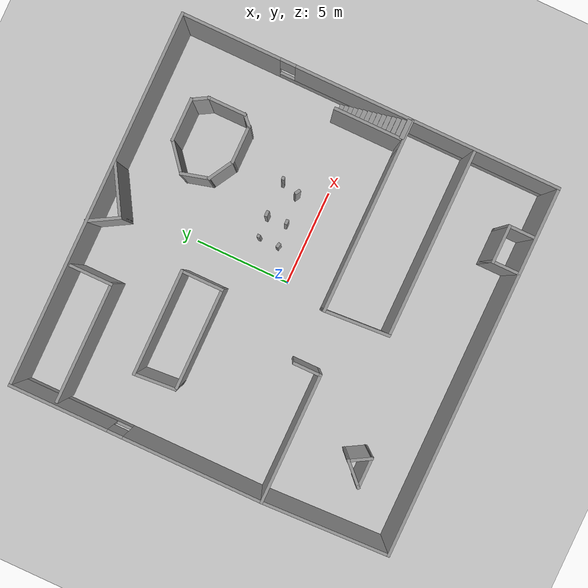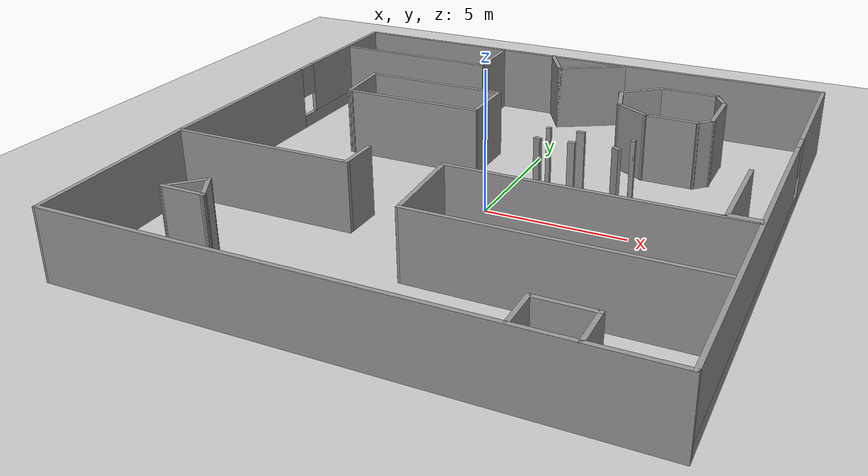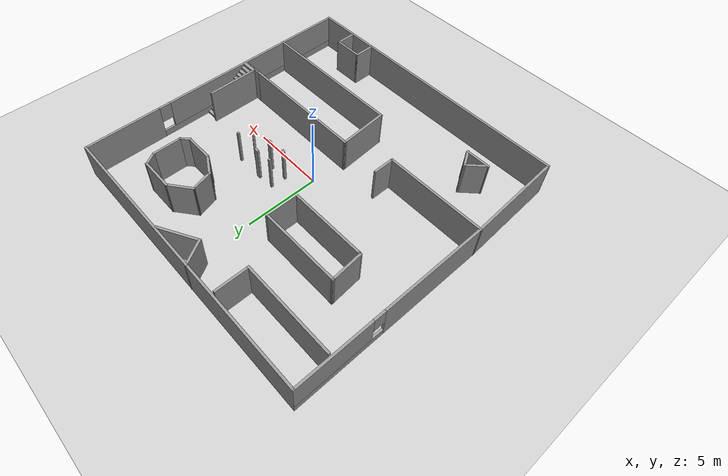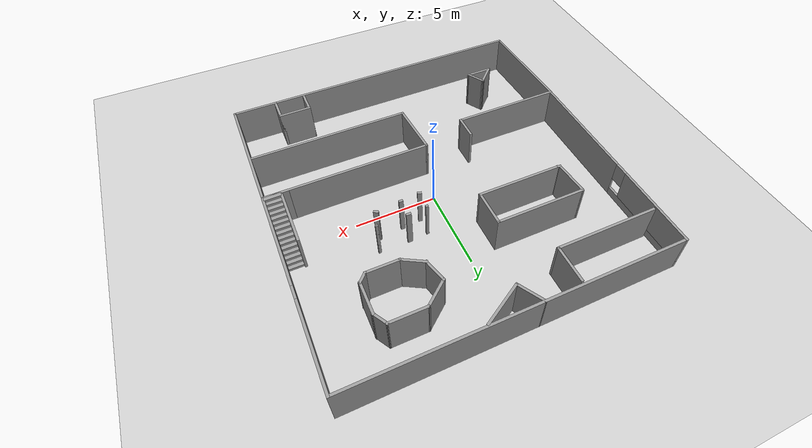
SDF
<sdf version="1.6">
 <world name="default">
  <light name="sun" type="directional">
   <pose>0 0 10 0 -0 0</pose>
   <diffuse>0.8 0.8 0.8 1</diffuse>
   <specular>0.2 0.2 0.2 1</specular>
   <attenuation>
    <range>1000</range>
    <constant>0.9</constant>
    <linear>0.01</linear>
    <quadratic>0.001</quadratic>
   </attenuation>
   <direction>-0.5 0.1 -0.9</direction>
  </light>
  <model name="ground_plane">
   <static>1</static>
   <link name="link">
    <collision name="collision">
     <geometry><plane><normal>0 0 1</normal><size>100 100</size></plane></geometry>
     <surface>
      <contact><collide_bitmask>65535</collide_bitmask></contact>
      <friction><ode><mu>100</mu><mu2>50</mu2></ode></friction>
     </surface>
    </collision>
    <visual name="visual">
     <cast_shadows>0</cast_shadows>
     <geometry><plane><normal>0 0 1</normal><size>100 100</size></plane></geometry>
     <material>
      <script><uri>file://media/materials/scripts/gazebo.material</uri><name>Gazebo/Grey</name></script>
     </material>
    </visual>
   </link>
  </model>
  <gravity>0 0 -9.8</gravity>
  <magnetic_field>6e-06 2.3e-05 -4.2e-05</magnetic_field>
  <atmosphere type="adiabatic"/>
  <physics name="default_physics" default="0" type="ode">
   <max_step_size>0.001</max_step_size>
   <real_time_factor>1</real_time_factor>
   <real_time_update_rate>1000</real_time_update_rate>
  </physics>
  <scene><ambient>0.4 0.4 0.4 1</ambient><background>0.7 0.7 0.7 1</background><shadows>1</shadows></scene>
  <audio><device>default</device></audio>
  <spherical_coordinates>
   <surface_model>EARTH_WGS84</surface_model>
   <latitude_deg>0</latitude_deg>
   <longitude_deg>0</longitude_deg>
   <elevation>0</elevation>
   <heading_deg>0</heading_deg>
  </spherical_coordinates>
  <model name="Untitled">
   <pose>-0.266413 0.062744 0 0 -0 0</pose>
   <link name="Stairs_0">
    <visual name="Stairs_0_Visual_0">
     <pose>9.15896 1.19772 0.083333 0 -0 0</pose>
     <geometry><box><size>1 0.233333 0.166667</size></box></geometry>
     <material>
      <script><uri>file://media/materials/scripts/gazebo.material</uri><name>Gazebo/Grey</name></script>
      <ambient>1 1 1 1</ambient>
     </material>
     <meta><layer>0</layer></meta>
    </visual>
    <collision name="Stairs_0_Collision_0">
     <geometry><box><size>1 0.233333 0.166667</size></box></geometry>
     <pose>9.15896 1.19772 0.083333 0 -0 0</pose>
    </collision>
    <visual name="Stairs_0_Visual_1">
     <pose>9.15896 0.964391 0.25 0 -0 0</pose>
     <geometry><box><size>1 0.233333 0.166667</size></box></geometry>
     <material>
      <script><uri>file://media/materials/scripts/gazebo.material</uri><name>Gazebo/Grey</name></script>
      <ambient>1 1 1 1</ambient>
     </material>
     <meta><layer>0</layer></meta>
    </visual>
    <collision name="Stairs_0_Collision_1">
     <geometry><box><size>1 0.233333 0.166667</size></box></geometry>
     <pose>9.15896 0.964391 0.25 0 -0 0</pose>
    </collision>
    <visual name="Stairs_0_Visual_2">
     <pose>9.15896 0.731058 0.416667 0 -0 0</pose>
     <geometry><box><size>1 0.233333 0.166667</size></box></geometry>
     <material>
      <script><uri>file://media/materials/scripts/gazebo.material</uri><name>Gazebo/Grey</name></script>
      <ambient>1 1 1 1</ambient>
     </material>
     <meta><layer>0</layer></meta>
    </visual>
    <collision name="Stairs_0_Collision_2">
     <geometry><box><size>1 0.233333 0.166667</size></box></geometry>
     <pose>9.15896 0.731058 0.416667 0 -0 0</pose>
    </collision>
    <visual name="Stairs_0_Visual_3">
     <pose>9.15896 0.497724 0.583333 0 -0 0</pose>
     <geometry><box><size>1 0.233333 0.166667</size></box></geometry>
     <material>
      <script><uri>file://media/materials/scripts/gazebo.material</uri><name>Gazebo/Grey</name></script>
      <ambient>1 1 1 1</ambient>
     </material>
     <meta><layer>0</layer></meta>
    </visual>
    <collision name="Stairs_0_Collision_3">
     <geometry><box><size>1 0.233333 0.166667</size></box></geometry>
     <pose>9.15896 0.497724 0.583333 0 -0 0</pose>
    </collision>
    <visual name="Stairs_0_Visual_4">
     <pose>9.15896 0.264391 0.75 0 -0 0</pose>
     <geometry><box><size>1 0.233333 0.166667</size></box></geometry>
     <material>
      <script><uri>file://media/materials/scripts/gazebo.material</uri><name>Gazebo/Grey</name></script>
      <ambient>1 1 1 1</ambient>
     </material>
     <meta><layer>0</layer></meta>
    </visual>
    <collision name="Stairs_0_Collision_4">
     <geometry><box><size>1 0.233333 0.166667</size></box></geometry>
     <pose>9.15896 0.264391 0.75 0 -0 0</pose>
    </collision>
    <visual name="Stairs_0_Visual_5">
     <pose>9.15896 0.031058 0.916667 0 -0 0</pose>
     <geometry><box><size>1 0.233333 0.166667</size></box></geometry>
     <material>
      <script><uri>file://media/materials/scripts/gazebo.material</uri><name>Gazebo/Grey</name></script>
      <ambient>1 1 1 1</ambient>
     </material>
     <meta><layer>0</layer></meta>
    </visual>
    <collision name="Stairs_0_Collision_5">
     <geometry><box><size>1 0.233333 0.166667</size></box></geometry>
     <pose>9.15896 0.031058 0.916667 0 -0 0</pose>
    </collision>
    <visual name="Stairs_0_Visual_6">
     <pose>9.15896 -0.202276 1.08333 0 -0 0</pose>
     <geometry><box><size>1 0.233333 0.166667</size></box></geometry>
     <material>
      <script><uri>file://media/materials/scripts/gazebo.material</uri><name>Gazebo/Grey</name></script>
      <ambient>1 1 1 1</ambient>
     </material>
     <meta><layer>0</layer></meta>
    </visual>
    <collision name="Stairs_0_Collision_6">
     <geometry><box><size>1 0.233333 0.166667</size></box></geometry>
     <pose>9.15896 -0.202276 1.08333 0 -0 0</pose>
    </collision>
    <visual name="Stairs_0_Visual_7">
     <pose>9.15896 -0.435609 1.25 0 -0 0</pose>
     <geometry><box><size>1 0.233333 0.166667</size></box></geometry>
     <material>
      <script><uri>file://media/materials/scripts/gazebo.material</uri><name>Gazebo/Grey</name></script>
      <ambient>1 1 1 1</ambient>
     </material>
     <meta><layer>0</layer></meta>
    </visual>
    <collision name="Stairs_0_Collision_7">
     <geometry><box><size>1 0.233333 0.166667</size></box></geometry>
     <pose>9.15896 -0.435609 1.25 0 -0 0</pose>
    </collision>
    <visual name="Stairs_0_Visual_8">
     <pose>9.15896 -0.668942 1.41667 0 -0 0</pose>
     <geometry><box><size>1 0.233333 0.166667</size></box></geometry>
     <material>
      <script><uri>file://media/materials/scripts/gazebo.material</uri><name>Gazebo/Grey</name></script>
      <ambient>1 1 1 1</ambient>
     </material>
     <meta><layer>0</layer></meta>
    </visual>
    <collision name="Stairs_0_Collision_8">
     <geometry><box><size>1 0.233333 0.166667</size></box></geometry>
     <pose>9.15896 -0.668942 1.41667 0 -0 0</pose>
    </collision>
    <visual name="Stairs_0_Visual_9">
     <pose>9.15896 -0.902276 1.58333 0 -0 0</pose>
     <geometry><box><size>1 0.233333 0.166667</size></box></geometry>
     <material>
      <script><uri>file://media/materials/scripts/gazebo.material</uri><name>Gazebo/Grey</name></script>
      <ambient>1 1 1 1</ambient>
     </material>
     <meta><layer>0</layer></meta>
    </visual>
    <collision name="Stairs_0_Collision_9">
     <geometry><box><size>1 0.233333 0.166667</size></box></geometry>
     <pose>9.15896 -0.902276 1.58333 0 -0 0</pose>
    </collision>
    <visual name="Stairs_0_Visual_10">
     <pose>9.15896 -1.13561 1.75 0 -0 0</pose>
     <geometry><box><size>1 0.233333 0.166667</size></box></geometry>
     <material>
      <script><uri>file://media/materials/scripts/gazebo.material</uri><name>Gazebo/Grey</name></script>
      <ambient>1 1 1 1</ambient>
     </material>
     <meta><layer>0</layer></meta>
    </visual>
    <collision name="Stairs_0_Collision_10">
     <geometry><box><size>1 0.233333 0.166667</size></box></geometry>
     <pose>9.15896 -1.13561 1.75 0 -0 0</pose>
    </collision>
    <visual name="Stairs_0_Visual_11">
     <pose>9.15896 -1.36894 1.91667 0 -0 0</pose>
     <geometry><box><size>1 0.233333 0.166667</size></box></geometry>
     <material>
      <script><uri>file://media/materials/scripts/gazebo.material</uri><name>Gazebo/Grey</name></script>
      <ambient>1 1 1 1</ambient>
     </material>
     <meta><layer>0</layer></meta>
    </visual>
    <collision name="Stairs_0_Collision_11">
     <geometry><box><size>1 0.233333 0.166667</size></box></geometry>
     <pose>9.15896 -1.36894 1.91667 0 -0 0</pose>
    </collision>
    <visual name="Stairs_0_Visual_12">
     <pose>9.15896 -1.60228 2.08333 0 -0 0</pose>
     <geometry><box><size>1 0.233333 0.166667</size></box></geometry>
     <material>
      <script><uri>file://media/materials/scripts/gazebo.material</uri><name>Gazebo/Grey</name></script>
      <ambient>1 1 1 1</ambient>
     </material>
     <meta><layer>0</layer></meta>
    </visual>
    <collision name="Stairs_0_Collision_12">
     <geometry><box><size>1 0.233333 0.166667</size></box></geometry>
     <pose>9.15896 -1.60228 2.08333 0 -0 0</pose>
    </collision>
    <visual name="Stairs_0_Visual_13">
     <pose>9.15896 -1.83561 2.25 0 -0 0</pose>
     <geometry><box><size>1 0.233333 0.166667</size></box></geometry>
     <material>
      <script><uri>file://media/materials/scripts/gazebo.material</uri><name>Gazebo/Grey</name></script>
      <ambient>1 1 1 1</ambient>
     </material>
     <meta><layer>0</layer></meta>
    </visual>
    <collision name="Stairs_0_Collision_13">
     <geometry><box><size>1 0.233333 0.166667</size></box></geometry>
     <pose>9.15896 -1.83561 2.25 0 -0 0</pose>
    </collision>
    <visual name="Stairs_0_Visual_14">
     <pose>9.15896 -2.06894 2.41667 0 -0 0</pose>
     <geometry><box><size>1 0.233333 0.166667</size></box></geometry>
     <material>
      <script><uri>file://media/materials/scripts/gazebo.material</uri><name>Gazebo/Grey</name></script>
      <ambient>1 1 1 1</ambient>
     </material>
     <meta><layer>0</layer></meta>
    </visual>
    <collision name="Stairs_0_Collision_14">
     <geometry><box><size>1 0.233333 0.166667</size></box></geometry>
     <pose>9.15896 -2.06894 2.41667 0 -0 0</pose>
    </collision>
   </link>
   <link name="Wall_0">
    <collision name="Wall_0_Collision">
     <geometry><box><size>1.5 0.15 2.5</size></box></geometry>
     <pose>0 0 1.25 0 -0 0</pose>
    </collision>
    <visual name="Wall_0_Visual">
     <pose>0 0 1.25 0 -0 0</pose>
     <geometry><box><size>1.5 0.15 2.5</size></box></geometry>
     <material>
      <script><uri>file://media/materials/scripts/gazebo.material</uri><name>Gazebo/Grey</name></script>
      <ambient>1 1 1 1</ambient>
     </material>
     <meta><layer>0</layer></meta>
    </visual>
    <pose>-3.07359 -2.63774 0 0 -0 -1.5708</pose>
   </link>
   <link name="Wall_1">
    <collision name="Wall_1_Collision">
     <geometry><box><size>6.75 0.15 2.5</size></box></geometry>
     <pose>0 0 1.25 0 -0 0</pose>
    </collision>
    <visual name="Wall_1_Visual">
     <pose>0 0 1.25 0 -0 0</pose>
     <geometry><box><size>6.75 0.15 2.5</size></box></geometry>
     <material>
      <script><uri>file://media/materials/scripts/gazebo.material</uri><name>Gazebo/Grey</name></script>
      <ambient>1 1 1 1</ambient>
     </material>
     <meta><layer>0</layer></meta>
    </visual>
    <pose>-6.37359 -3.31274 0 0 -0 3.14159</pose>
   </link>
   <link name="Wall_10">
    <collision name="Wall_10_Collision">
     <geometry><box><size>1.5 0.15 2.5</size></box></geometry>
     <pose>0 0 1.25 0 -0 0</pose>
    </collision>
    <visual name="Wall_10_Visual">
     <pose>0 0 1.25 0 -0 0</pose>
     <geometry><box><size>1.5 0.15 2.5</size></box></geometry>
     <material>
      <script><uri>file://media/materials/scripts/gazebo.material</uri><name>Gazebo/Grey</name></script>
      <ambient>1 1 1 1</ambient>
     </material>
     <meta><layer>0</layer></meta>
    </visual>
    <pose>5.22542 -9.12088 0 0 -0 1.5708</pose>
   </link>
   <link name="Wall_11">
    <collision name="Wall_11_Collision">
     <geometry><box><size>2 0.15 2.5</size></box></geometry>
     <pose>0 0 1.25 0 -0 0</pose>
    </collision>
    <visual name="Wall_11_Visual">
     <pose>0 0 1.25 0 -0 0</pose>
     <geometry><box><size>2 0.15 2.5</size></box></geometry>
     <material>
      <script><uri>file://media/materials/scripts/gazebo.material</uri><name>Gazebo/Grey</name></script>
      <ambient>1 1 1 1</ambient>
     </material>
     <meta><layer>0</layer></meta>
    </visual>
    <pose>6.15042 -8.44588 0 0 -0 0</pose>
   </link>
   <link name="Wall_12">
    <collision name="Wall_12_Collision">
     <geometry><box><size>1.5 0.15 2.5</size></box></geometry>
     <pose>0 0 1.25 0 -0 0</pose>
    </collision>
    <visual name="Wall_12_Visual">
     <pose>0 0 1.25 0 -0 0</pose>
     <geometry><box><size>1.5 0.15 2.5</size></box></geometry>
     <material>
      <script><uri>file://media/materials/scripts/gazebo.material</uri><name>Gazebo/Grey</name></script>
      <ambient>1 1 1 1</ambient>
     </material>
     <meta><layer>0</layer></meta>
    </visual>
    <pose>7.07542 -9.12088 0 0 -0 -1.5708</pose>
   </link>
   <link name="Wall_14">
    <collision name="Wall_14_Collision">
     <geometry><box><size>1.5 0.15 2.5</size></box></geometry>
     <pose>0 0 1.25 0 -0 0</pose>
    </collision>
    <visual name="Wall_14_Visual">
     <pose>0 0 1.25 0 -0 0</pose>
     <geometry><box><size>1.5 0.15 2.5</size></box></geometry>
     <material>
      <script><uri>file://media/materials/scripts/gazebo.material</uri><name>Gazebo/Grey</name></script>
      <ambient>1 1 1 1</ambient>
     </material>
     <meta><layer>0</layer></meta>
    </visual>
    <pose>-6.63623 -6.68897 0 0 -0 0.785398</pose>
   </link>
   <link name="Wall_15">
    <collision name="Wall_15_Collision">
     <geometry><box><size>1.25 0.15 2.5</size></box></geometry>
     <pose>0 0 1.25 0 -0 0</pose>
    </collision>
    <visual name="Wall_15_Visual">
     <pose>0 0 1.25 0 -0 0</pose>
     <geometry><box><size>1.25 0.15 2.5</size></box></geometry>
     <material>
      <script><uri>file://media/materials/scripts/gazebo.material</uri><name>Gazebo/Grey</name></script>
      <ambient>1 1 1 1</ambient>
     </material>
     <meta><layer>0</layer></meta>
    </visual>
    <pose>-5.88394 -6.68799 0 0 -0 -1.0472</pose>
   </link>
   <link name="Wall_16">
    <collision name="Wall_16_Collision">
     <geometry><box><size>1.6546 0.15 2.5</size></box></geometry>
     <pose>0 0 1.25 0 -0 0</pose>
    </collision>
    <visual name="Wall_16_Visual">
     <pose>0 0 1.25 0 -0 0</pose>
     <geometry><box><size>1.6546 0.15 2.5</size></box></geometry>
     <material>
      <script><uri>file://media/materials/scripts/gazebo.material</uri><name>Gazebo/Grey</name></script>
      <ambient>1 1 1 1</ambient>
     </material>
     <meta><layer>0</layer></meta>
    </visual>
    <pose>-6.36123 -7.16529 0 0 -0 -3.14029</pose>
   </link>
   <link name="Wall_19">
    <collision name="Wall_19_Collision">
     <geometry><box><size>1.5 0.15 2.5</size></box></geometry>
     <pose>0 0 1.25 0 -0 0</pose>
    </collision>
    <visual name="Wall_19_Visual">
     <pose>0 0 1.25 0 -0 0</pose>
     <geometry><box><size>1.5 0.15 2.5</size></box></geometry>
     <material>
      <script><uri>file://media/materials/scripts/gazebo.material</uri><name>Gazebo/Grey</name></script>
      <ambient>1 1 1 1</ambient>
     </material>
     <meta><layer>0</layer></meta>
    </visual>
    <pose>8.95499 -2.19353 0 0 -0 0</pose>
   </link>
   <link name="Wall_2">
    <pose>-9.67359 3.23726 0 0 -0 1.5708</pose>
    <visual name="Wall_2_Visual_0">
     <pose>-2.96957 0 1.25 0 -0 0</pose>
     <geometry><box><size>7.31086 0.15 2.5</size></box></geometry>
     <material>
      <script><uri>file://media/materials/scripts/gazebo.material</uri><name>Gazebo/Grey</name></script>
      <ambient>1 1 1 1</ambient>
     </material>
     <meta><layer>0</layer></meta>
    </visual>
    <collision name="Wall_2_Collision_0">
     <geometry><box><size>7.31086 0.15 2.5</size></box></geometry>
     <pose>-2.96957 0 1.25 0 -0 0</pose>
    </collision>
    <visual name="Wall_2_Visual_1">
     <pose>3.65543 0 0.25 0 -0 0</pose>
     <geometry><box><size>5.93914 0.15 0.5</size></box></geometry>
     <material>
      <script><uri>file://media/materials/scripts/gazebo.material</uri><name>Gazebo/Grey</name></script>
      <ambient>1 1 1 1</ambient>
     </material>
     <meta><layer>0</layer></meta>
    </visual>
    <collision name="Wall_2_Collision_1">
     <geometry><box><size>5.93914 0.15 0.5</size></box></geometry>
     <pose>3.65543 0 0.25 0 -0 0</pose>
    </collision>
    <visual name="Wall_2_Visual_2">
     <pose>4.05543 0 1.5 0 -0 0</pose>
     <geometry><box><size>5.13914 0.15 2</size></box></geometry>
     <material>
      <script><uri>file://media/materials/scripts/gazebo.material</uri><name>Gazebo/Grey</name></script>
      <ambient>1 1 1 1</ambient>
     </material>
     <meta><layer>0</layer></meta>
    </visual>
    <collision name="Wall_2_Collision_2">
     <geometry><box><size>5.13914 0.15 2</size></box></geometry>
     <pose>4.05543 0 1.5 0 -0 0</pose>
    </collision>
    <visual name="Wall_2_Visual_3">
     <pose>1.08586 0 1.9 0 -0 0</pose>
     <geometry><box><size>0.8 0.15 1.2</size></box></geometry>
     <material>
      <script><uri>file://media/materials/scripts/gazebo.material</uri><name>Gazebo/Grey</name></script>
      <ambient>1 1 1 1</ambient>
     </material>
     <meta><layer>0</layer></meta>
    </visual>
    <collision name="Wall_2_Collision_3">
     <geometry><box><size>0.8 0.15 1.2</size></box></geometry>
     <pose>1.08586 0 1.9 0 -0 0</pose>
    </collision>
   </link>
   <link name="Wall_20">
    <collision name="Wall_20_Collision">
     <geometry><box><size>10 0.15 2.5</size></box></geometry>
     <pose>0 0 1.25 0 -0 0</pose>
    </collision>
    <visual name="Wall_20_Visual">
     <pose>0 0 1.25 0 -0 0</pose>
     <geometry><box><size>10 0.15 2.5</size></box></geometry>
     <material>
      <script><uri>file://media/materials/scripts/gazebo.material</uri><name>Gazebo/Grey</name></script>
      <ambient>1 1 1 1</ambient>
     </material>
     <meta><layer>0</layer></meta>
    </visual>
    <pose>4.70499 -2.19353 0 0 -0 3.14159</pose>
   </link>
   <link name="Wall_21">
    <collision name="Wall_21_Collision">
     <geometry><box><size>3.43063 0.15 2.5</size></box></geometry>
     <pose>0 0 1.25 0 -0 0</pose>
    </collision>
    <visual name="Wall_21_Visual">
     <pose>0 0 1.25 0 -0 0</pose>
     <geometry><box><size>3.43063 0.15 2.5</size></box></geometry>
     <material>
      <script><uri>file://media/materials/scripts/gazebo.material</uri><name>Gazebo/Grey</name></script>
      <ambient>1 1 1 1</ambient>
     </material>
     <meta><layer>0</layer></meta>
    </visual>
    <pose>-0.112691 -3.83033 0 0 -0 -1.50533</pose>
   </link>
   <link name="Wall_23">
    <collision name="Wall_23_Collision">
     <geometry><box><size>3.5 0.15 2.5</size></box></geometry>
     <pose>0 0 1.25 0 -0 0</pose>
    </collision>
    <visual name="Wall_23_Visual">
     <pose>0 0 1.25 0 -0 0</pose>
     <geometry><box><size>3.5 0.15 2.5</size></box></geometry>
     <material>
      <script><uri>file://media/materials/scripts/gazebo.material</uri><name>Gazebo/Grey</name></script>
      <ambient>1 1 1 1</ambient>
     </material>
     <meta><layer>0</layer></meta>
    </visual>
    <pose>8.65008 -0.33349 0 0 -0 1.5708</pose>
   </link>
   <link name="Wall_25">
    <collision name="Wall_25_Collision">
     <geometry><box><size>2.25 0.15 2.5</size></box></geometry>
     <pose>0 0 1.25 0 -0 0</pose>
    </collision>
    <visual name="Wall_25_Visual">
     <pose>0 0 1.25 0 -0 0</pose>
     <geometry><box><size>2.25 0.15 2.5</size></box></geometry>
     <material>
      <script><uri>file://media/materials/scripts/gazebo.material</uri><name>Gazebo/Grey</name></script>
      <ambient>1 1 1 1</ambient>
     </material>
     <meta><layer>0</layer></meta>
    </visual>
    <pose>-3.33157 8.50681 0 0 -0 -1.5708</pose>
   </link>
   <link name="Wall_26">
    <collision name="Wall_26_Collision">
     <geometry><box><size>6.25 0.15 2.5</size></box></geometry>
     <pose>0 0 1.25 0 -0 0</pose>
    </collision>
    <visual name="Wall_26_Visual">
     <pose>0 0 1.25 0 -0 0</pose>
     <geometry><box><size>6.25 0.15 2.5</size></box></geometry>
     <material>
      <script><uri>file://media/materials/scripts/gazebo.material</uri><name>Gazebo/Grey</name></script>
      <ambient>1 1 1 1</ambient>
     </material>
     <meta><layer>0</layer></meta>
    </visual>
    <pose>-6.38157 7.45681 0 0 -0 3.14159</pose>
   </link>
   <link name="Wall_28">
    <collision name="Wall_28_Collision">
     <geometry><box><size>2.25 0.15 2.5</size></box></geometry>
     <pose>0 0 1.25 0 -0 0</pose>
    </collision>
    <visual name="Wall_28_Visual">
     <pose>0 0 1.25 0 -0 0</pose>
     <geometry><box><size>2.25 0.15 2.5</size></box></geometry>
     <material>
      <script><uri>file://media/materials/scripts/gazebo.material</uri><name>Gazebo/Grey</name></script>
      <ambient>1 1 1 1</ambient>
     </material>
     <meta><layer>0</layer></meta>
    </visual>
    <pose>5.12022 7.70636 0 0 -0 0</pose>
   </link>
   <link name="Wall_29">
    <collision name="Wall_29_Collision">
     <geometry><box><size>1 0.15 2.5</size></box></geometry>
     <pose>0 0 1.25 0 -0 0</pose>
    </collision>
    <visual name="Wall_29_Visual">
     <pose>0 0 1.25 0 -0 0</pose>
     <geometry><box><size>1 0.15 2.5</size></box></geometry>
     <material>
      <script><uri>file://media/materials/scripts/gazebo.material</uri><name>Gazebo/Grey</name></script>
      <ambient>1 1 1 1</ambient>
     </material>
     <meta><layer>0</layer></meta>
    </visual>
    <pose>6.38272 7.3383 0 0 -0 -1.0472</pose>
   </link>
   <link name="Wall_3">
    <collision name="Wall_3_Collision">
     <geometry><box><size>19.5 0.15 2.5</size></box></geometry>
     <pose>0 0 1.25 0 -0 0</pose>
    </collision>
    <visual name="Wall_3_Visual">
     <pose>0 0 1.25 0 -0 0</pose>
     <geometry><box><size>19.5 0.15 2.5</size></box></geometry>
     <material>
      <script><uri>file://media/materials/scripts/gazebo.material</uri><name>Gazebo/Grey</name></script>
      <ambient>1 1 1 1</ambient>
     </material>
     <meta><layer>0</layer></meta>
    </visual>
    <pose>0.001413 9.78726 0 0 -0 0</pose>
   </link>
   <link name="Wall_30">
    <collision name="Wall_30_Collision">
     <geometry><box><size>2 0.15 2.5</size></box></geometry>
     <pose>0 0 1.25 0 -0 0</pose>
    </collision>
    <visual name="Wall_30_Visual">
     <pose>0 0 1.25 0 -0 0</pose>
     <geometry><box><size>2 0.15 2.5</size></box></geometry>
     <material>
      <script><uri>file://media/materials/scripts/gazebo.material</uri><name>Gazebo/Grey</name></script>
      <ambient>1 1 1 1</ambient>
     </material>
     <meta><layer>0</layer></meta>
    </visual>
    <pose>6.59522 6.04524 0 0 -0 -1.5708</pose>
   </link>
   <link name="Wall_31">
    <collision name="Wall_31_Collision">
     <geometry><box><size>0.75 0.15 2.5</size></box></geometry>
     <pose>0 0 1.25 0 -0 0</pose>
    </collision>
    <visual name="Wall_31_Visual">
     <pose>0 0 1.25 0 -0 0</pose>
     <geometry><box><size>0.75 0.15 2.5</size></box></geometry>
     <material>
      <script><uri>file://media/materials/scripts/gazebo.material</uri><name>Gazebo/Grey</name></script>
      <ambient>1 1 1 1</ambient>
     </material>
     <meta><layer>0</layer></meta>
    </visual>
    <pose>6.38309 4.90811 0 0 -0 -2.35619</pose>
   </link>
   <link name="Wall_32">
    <collision name="Wall_32_Collision">
     <geometry><box><size>2 0.15 2.5</size></box></geometry>
     <pose>0 0 1.25 0 -0 0</pose>
    </collision>
    <visual name="Wall_32_Visual">
     <pose>0 0 1.25 0 -0 0</pose>
     <geometry><box><size>2 0.15 2.5</size></box></geometry>
     <material>
      <script><uri>file://media/materials/scripts/gazebo.material</uri><name>Gazebo/Grey</name></script>
      <ambient>1 1 1 1</ambient>
     </material>
     <meta><layer>0</layer></meta>
    </visual>
    <pose>5.24596 4.69598 0 0 -0 3.14159</pose>
   </link>
   <link name="Wall_33">
    <collision name="Wall_33_Collision">
     <geometry><box><size>1.5 0.15 2.5</size></box></geometry>
     <pose>0 0 1.25 0 -0 0</pose>
    </collision>
    <visual name="Wall_33_Visual">
     <pose>0 0 1.25 0 -0 0</pose>
     <geometry><box><size>1.5 0.15 2.5</size></box></geometry>
     <material>
      <script><uri>file://media/materials/scripts/gazebo.material</uri><name>Gazebo/Grey</name></script>
      <ambient>1 1 1 1</ambient>
     </material>
     <meta><layer>0</layer></meta>
    </visual>
    <pose>3.73639 5.03348 0 0 -0 2.61799</pose>
   </link>
   <link name="Wall_34">
    <collision name="Wall_34_Collision">
     <geometry><box><size>1.5 0.15 2.5</size></box></geometry>
     <pose>0 0 1.25 0 -0 0</pose>
    </collision>
    <visual name="Wall_34_Visual">
     <pose>0 0 1.25 0 -0 0</pose>
     <geometry><box><size>1.5 0.15 2.5</size></box></geometry>
     <material>
      <script><uri>file://media/materials/scripts/gazebo.material</uri><name>Gazebo/Grey</name></script>
      <ambient>1 1 1 1</ambient>
     </material>
     <meta><layer>0</layer></meta>
    </visual>
    <pose>2.97712 6.02298 0 0 -0 1.8326</pose>
   </link>
   <link name="Wall_35">
    <collision name="Wall_35_Collision">
     <geometry><box><size>1.78435 0.15 2.5</size></box></geometry>
     <pose>0 0 1.25 0 -0 0</pose>
    </collision>
    <visual name="Wall_35_Visual">
     <pose>0 0 1.25 0 -0 0</pose>
     <geometry><box><size>1.78435 0.15 2.5</size></box></geometry>
     <material>
      <script><uri>file://media/materials/scripts/gazebo.material</uri><name>Gazebo/Grey</name></script>
      <ambient>1 1 1 1</ambient>
     </material>
     <meta><layer>0</layer></meta>
    </visual>
    <pose>3.43632 7.19067 0 0 -0 0.682932</pose>
   </link>
   <link name="Wall_37">
    <collision name="Wall_37_Collision">
     <geometry><box><size>5.5 0.15 2.5</size></box></geometry>
     <pose>0 0 1.25 0 -0 0</pose>
    </collision>
    <visual name="Wall_37_Visual">
     <pose>0 0 1.25 0 -0 0</pose>
     <geometry><box><size>5.5 0.15 2.5</size></box></geometry>
     <material>
      <script><uri>file://media/materials/scripts/gazebo.material</uri><name>Gazebo/Grey</name></script>
      <ambient>1 1 1 1</ambient>
     </material>
     <meta><layer>0</layer></meta>
    </visual>
    <pose>-4.03364 4.69939 0 0 -0 0</pose>
   </link>
   <link name="Wall_38">
    <collision name="Wall_38_Collision">
     <geometry><box><size>2.25 0.15 2.5</size></box></geometry>
     <pose>0 0 1.25 0 -0 0</pose>
    </collision>
    <visual name="Wall_38_Visual">
     <pose>0 0 1.25 0 -0 0</pose>
     <geometry><box><size>2.25 0.15 2.5</size></box></geometry>
     <material>
      <script><uri>file://media/materials/scripts/gazebo.material</uri><name>Gazebo/Grey</name></script>
      <ambient>1 1 1 1</ambient>
     </material>
     <meta><layer>0</layer></meta>
    </visual>
    <pose>-1.35864 3.64939 0 0 -0 -1.5708</pose>
   </link>
   <link name="Wall_39">
    <collision name="Wall_39_Collision">
     <geometry><box><size>5.25 0.15 2.5</size></box></geometry>
     <pose>0 0 1.25 0 -0 0</pose>
    </collision>
    <visual name="Wall_39_Visual">
     <pose>0 0 1.25 0 -0 0</pose>
     <geometry><box><size>5.25 0.15 2.5</size></box></geometry>
     <material>
      <script><uri>file://media/materials/scripts/gazebo.material</uri><name>Gazebo/Grey</name></script>
      <ambient>1 1 1 1</ambient>
     </material>
     <meta><layer>0</layer></meta>
    </visual>
    <pose>-3.90864 2.59939 0 0 -0 3.14159</pose>
   </link>
   <link name="Wall_4">
    <pose>9.67641 -0.012744 0 0 -0 -1.5708</pose>
    <visual name="Wall_4_Visual_0">
     <pose>-7.2852 0 1.25 0 -0 0</pose>
     <geometry><box><size>5.1796 0.15 2.5</size></box></geometry>
     <material>
      <script><uri>file://media/materials/scripts/gazebo.material</uri><name>Gazebo/Grey</name></script>
      <ambient>1 1 1 1</ambient>
     </material>
     <meta><layer>0</layer></meta>
    </visual>
    <collision name="Wall_4_Collision_0">
     <geometry><box><size>5.1796 0.15 2.5</size></box></geometry>
     <pose>-7.2852 0 1.25 0 -0 0</pose>
    </collision>
    <visual name="Wall_4_Visual_1">
     <pose>2.5898 0 0.25 0 -0 0</pose>
     <geometry><box><size>14.5704 0.15 0.5</size></box></geometry>
     <material>
      <script><uri>file://media/materials/scripts/gazebo.material</uri><name>Gazebo/Grey</name></script>
      <ambient>1 1 1 1</ambient>
     </material>
     <meta><layer>0</layer></meta>
    </visual>
    <collision name="Wall_4_Collision_1">
     <geometry><box><size>14.5704 0.15 0.5</size></box></geometry>
     <pose>2.5898 0 0.25 0 -0 0</pose>
    </collision>
    <visual name="Wall_4_Visual_2">
     <pose>2.9898 0 1.5 0 -0 0</pose>
     <geometry><box><size>13.7704 0.15 2</size></box></geometry>
     <material>
      <script><uri>file://media/materials/scripts/gazebo.material</uri><name>Gazebo/Grey</name></script>
      <ambient>1 1 1 1</ambient>
     </material>
     <meta><layer>0</layer></meta>
    </visual>
    <collision name="Wall_4_Collision_2">
     <geometry><box><size>13.7704 0.15 2</size></box></geometry>
     <pose>2.9898 0 1.5 0 -0 0</pose>
    </collision>
    <visual name="Wall_4_Visual_3">
     <pose>-4.2954 0 1.9 0 -0 0</pose>
     <geometry><box><size>0.8 0.15 1.2</size></box></geometry>
     <material>
      <script><uri>file://media/materials/scripts/gazebo.material</uri><name>Gazebo/Grey</name></script>
      <ambient>1 1 1 1</ambient>
     </material>
     <meta><layer>0</layer></meta>
    </visual>
    <collision name="Wall_4_Collision_3">
     <geometry><box><size>0.8 0.15 1.2</size></box></geometry>
     <pose>-4.2954 0 1.9 0 -0 0</pose>
    </collision>
   </link>
   <link name="Wall_40">
    <collision name="Wall_40_Collision">
     <geometry><box><size>0.25 0.15 2.5</size></box></geometry>
     <pose>0 0 1.25 0 -0 0</pose>
    </collision>
    <visual name="Wall_40_Visual">
     <pose>0 0 1.25 0 -0 0</pose>
     <geometry><box><size>0.25 0.15 2.5</size></box></geometry>
     <material>
      <script><uri>file://media/materials/scripts/gazebo.material</uri><name>Gazebo/Grey</name></script>
      <ambient>1 1 1 1</ambient>
     </material>
     <meta><layer>0</layer></meta>
    </visual>
    <pose>-6.50694 2.61233 0 0 -0 2.87979</pose>
   </link>
   <link name="Wall_41">
    <collision name="Wall_41_Collision">
     <geometry><box><size>2.22978 0.15 2.5</size></box></geometry>
     <pose>0 0 1.25 0 -0 0</pose>
    </collision>
    <visual name="Wall_41_Visual">
     <pose>0 0 1.25 0 -0 0</pose>
     <geometry><box><size>2.22978 0.15 2.5</size></box></geometry>
     <material>
      <script><uri>file://media/materials/scripts/gazebo.material</uri><name>Gazebo/Grey</name></script>
      <ambient>1 1 1 1</ambient>
     </material>
     <meta><layer>0</layer></meta>
    </visual>
    <pose>-6.63194 3.66233 0 0 -0 1.64463</pose>
   </link>
   <link name="Wall_43">
    <collision name="Wall_43_Collision">
     <geometry><box><size>0.16 0.15 2.5</size></box></geometry>
     <pose>0 0 1.25 0 -0 0</pose>
    </collision>
    <visual name="Wall_43_Visual">
     <pose>0 0 1.25 0 -0 0</pose>
     <geometry><box><size>0.16 0.15 2.5</size></box></geometry>
     <material>
      <script><uri>file://media/materials/scripts/gazebo.material</uri><name>Gazebo/Grey</name></script>
      <ambient>1 1 1 1</ambient>
     </material>
     <meta><layer>0</layer></meta>
    </visual>
    <pose>1.66964 2.10876 0 0 -0 0</pose>
   </link>
   <link name="Wall_45">
    <collision name="Wall_45_Collision">
     <geometry><box><size>0.3 0.15 2.5</size></box></geometry>
     <pose>0 0 1.25 0 -0 0</pose>
    </collision>
    <visual name="Wall_45_Visual">
     <pose>0 0 1.25 0 -0 0</pose>
     <geometry><box><size>0.3 0.15 2.5</size></box></geometry>
     <material>
      <script><uri>file://media/materials/scripts/gazebo.material</uri><name>Gazebo/Grey</name></script>
      <ambient>1 1 1 1</ambient>
     </material>
     <meta><layer>0</layer></meta>
    </visual>
    <pose>2.79243 2.20128 0 0 -0 3.14159</pose>
   </link>
   <link name="Wall_48">
    <collision name="Wall_48_Collision">
     <geometry><box><size>0.16 0.15 2.5</size></box></geometry>
     <pose>0 0 1.25 0 -0 0</pose>
    </collision>
    <visual name="Wall_48_Visual">
     <pose>0 0 1.25 0 -0 0</pose>
     <geometry><box><size>0.16 0.15 2.5</size></box></geometry>
     <material>
      <script><uri>file://media/materials/scripts/gazebo.material</uri><name>Gazebo/Grey</name></script>
      <ambient>1 1 1 1</ambient>
     </material>
     <meta><layer>0</layer></meta>
    </visual>
    <pose>4.63036 2.20128 0 0 -0 0</pose>
   </link>
   <link name="Wall_49">
    <collision name="Wall_49_Collision">
     <geometry><box><size>0.16 0.15 2.5</size></box></geometry>
     <pose>0 0 1.25 0 -0 0</pose>
    </collision>
    <visual name="Wall_49_Visual">
     <pose>0 0 1.25 0 -0 0</pose>
     <geometry><box><size>0.16 0.15 2.5</size></box></geometry>
     <material>
      <script><uri>file://media/materials/scripts/gazebo.material</uri><name>Gazebo/Grey</name></script>
      <ambient>1 1 1 1</ambient>
     </material>
     <meta><layer>0</layer></meta>
    </visual>
    <pose>4.63036 2.20128 0 0 -0 3.14159</pose>
   </link>
   <link name="Wall_5">
    <collision name="Wall_5_Collision">
     <geometry><box><size>19.25 0.15 2.5</size></box></geometry>
     <pose>0 0 1.25 0 -0 0</pose>
    </collision>
    <visual name="Wall_5_Visual">
     <pose>0 0 1.25 0 -0 0</pose>
     <geometry><box><size>19.25 0.15 2.5</size></box></geometry>
     <material>
      <script><uri>file://media/materials/scripts/gazebo.material</uri><name>Gazebo/Grey</name></script>
      <ambient>1 1 1 1</ambient>
     </material>
     <meta><layer>0</layer></meta>
    </visual>
    <pose>0.126413 -9.81274 0 0 -0 3.14159</pose>
   </link>
   <link name="Wall_51">
    <collision name="Wall_51_Collision">
     <geometry><box><size>0.25 0.15 2.5</size></box></geometry>
     <pose>0 0 1.25 0 -0 0</pose>
    </collision>
    <visual name="Wall_51_Visual">
     <pose>0 0 1.25 0 -0 0</pose>
     <geometry><box><size>0.25 0.15 2.5</size></box></geometry>
     <material>
      <script><uri>file://media/materials/scripts/gazebo.material</uri><name>Gazebo/Grey</name></script>
      <ambient>1 1 1 1</ambient>
     </material>
     <meta><layer>0</layer></meta>
    </visual>
    <pose>1.66667 1.07807 0 0 -0 -0.261799</pose>
   </link>
   <link name="Wall_53">
    <collision name="Wall_53_Collision">
     <geometry><box><size>0.25 0.15 2.5</size></box></geometry>
     <pose>0 0 1.25 0 -0 0</pose>
    </collision>
    <visual name="Wall_53_Visual">
     <pose>0 0 1.25 0 -0 0</pose>
     <geometry><box><size>0.25 0.15 2.5</size></box></geometry>
     <material>
      <script><uri>file://media/materials/scripts/gazebo.material</uri><name>Gazebo/Grey</name></script>
      <ambient>1 1 1 1</ambient>
     </material>
     <meta><layer>0</layer></meta>
    </visual>
    <pose>2.82491 1.18353 0 0 -0 0</pose>
   </link>
   <link name="Wall_55">
    <collision name="Wall_55_Collision">
     <geometry><box><size>0.3 0.15 2.5</size></box></geometry>
     <pose>0 0 1.25 0 -0 0</pose>
    </collision>
    <visual name="Wall_55_Visual">
     <pose>0 0 1.25 0 -0 0</pose>
     <geometry><box><size>0.3 0.15 2.5</size></box></geometry>
     <material>
      <script><uri>file://media/materials/scripts/gazebo.material</uri><name>Gazebo/Grey</name></script>
      <ambient>1 1 1 1</ambient>
     </material>
     <meta><layer>0</layer></meta>
    </visual>
    <pose>4.3291 1.31356 0 0 -0 2.61799</pose>
   </link>
   <link name="Wall_57">
    <collision name="Wall_57_Collision">
     <geometry><box><size>1.75 0.15 2.5</size></box></geometry>
     <pose>0 0 1.25 0 -0 0</pose>
    </collision>
    <visual name="Wall_57_Visual">
     <pose>0 0 1.25 0 -0 0</pose>
     <geometry><box><size>1.75 0.15 2.5</size></box></geometry>
     <material>
      <script><uri>file://media/materials/scripts/gazebo.material</uri><name>Gazebo/Grey</name></script>
      <ambient>1 1 1 1</ambient>
     </material>
     <meta><layer>0</layer></meta>
    </visual>
    <pose>-0.711033 9.0953 0 0 -0 -1.0472</pose>
   </link>
   <link name="Wall_58">
    <collision name="Wall_58_Collision">
     <geometry><box><size>2.75 0.15 2.5</size></box></geometry>
     <pose>0 0 1.25 0 -0 0</pose>
    </collision>
    <visual name="Wall_58_Visual">
     <pose>0 0 1.25 0 -0 0</pose>
     <geometry><box><size>2.75 0.15 2.5</size></box></geometry>
     <material>
      <script><uri>file://media/materials/scripts/gazebo.material</uri><name>Gazebo/Grey</name></script>
      <ambient>1 1 1 1</ambient>
     </material>
     <meta><layer>0</layer></meta>
    </visual>
    <pose>0.8148 9.05248 0 0 -0 0.523599</pose>
   </link>
   <link name="Wall_6">
    <collision name="Wall_6_Collision">
     <geometry><box><size>6.65481 0.15 2.5</size></box></geometry>
     <pose>0 0 1.25 0 -0 0</pose>
    </collision>
    <visual name="Wall_6_Visual">
     <pose>0 0 1.25 0 -0 0</pose>
     <geometry><box><size>6.65481 0.15 2.5</size></box></geometry>
     <material>
      <script><uri>file://media/materials/scripts/gazebo.material</uri><name>Gazebo/Grey</name></script>
      <ambient>1 1 1 1</ambient>
     </material>
     <meta><layer>0</layer></meta>
    </visual>
    <pose>-9.54859 -6.56274 0 0 -0 1.60924</pose>
   </link>
   <link name="Wall_8">
    <collision name="Wall_8_Collision">
     <geometry><box><size>9.75 0.15 2.5</size></box></geometry>
     <pose>0 0 1.25 0 -0 0</pose>
    </collision>
    <visual name="Wall_8_Visual">
     <pose>0 0 1.25 0 -0 0</pose>
     <geometry><box><size>9.75 0.15 2.5</size></box></geometry>
     <material>
      <script><uri>file://media/materials/scripts/gazebo.material</uri><name>Gazebo/Grey</name></script>
      <ambient>1 1 1 1</ambient>
     </material>
     <meta><layer>0</layer></meta>
    </visual>
    <pose>4.79462 -5.46713 0 0 -0 3.14159</pose>
   </link>
   <static>1</static>
  </model>
 </world>
</sdf>
